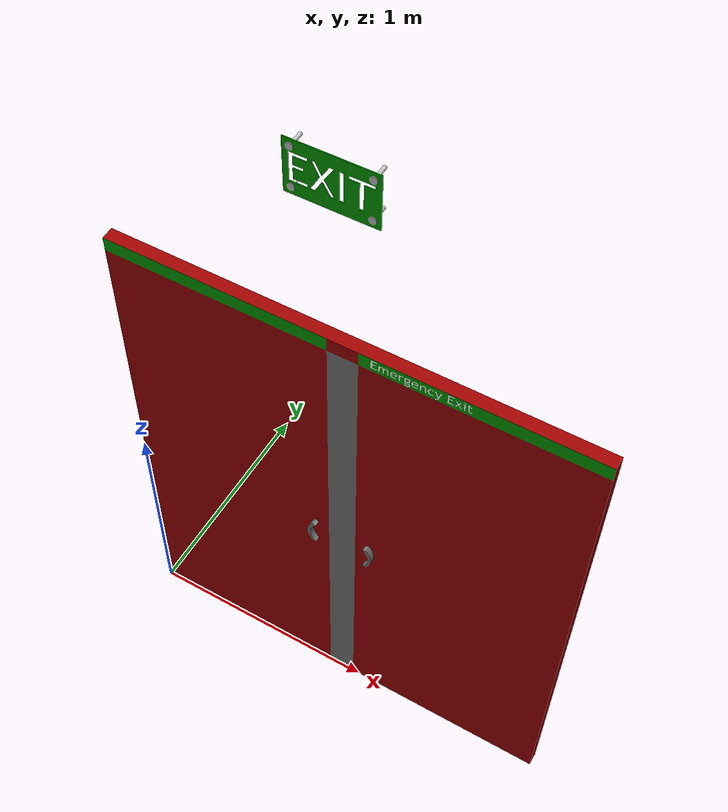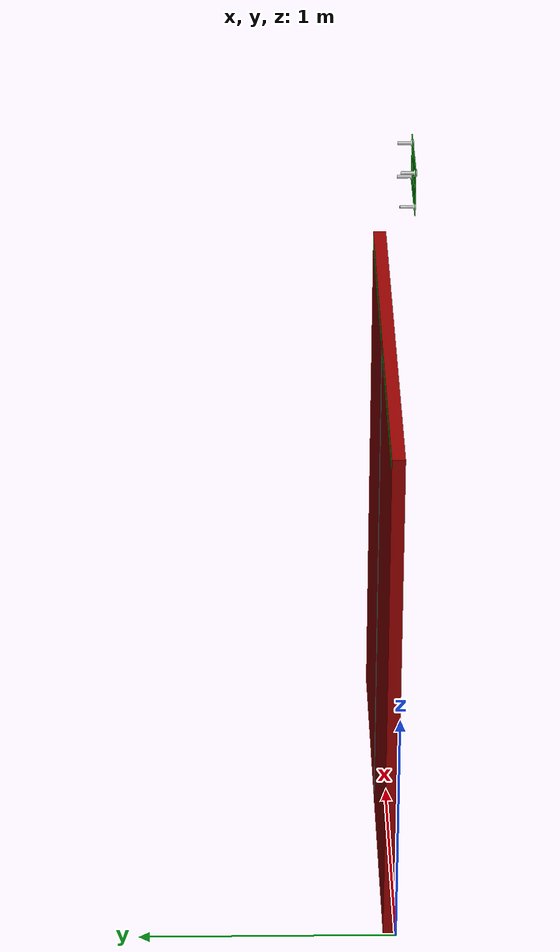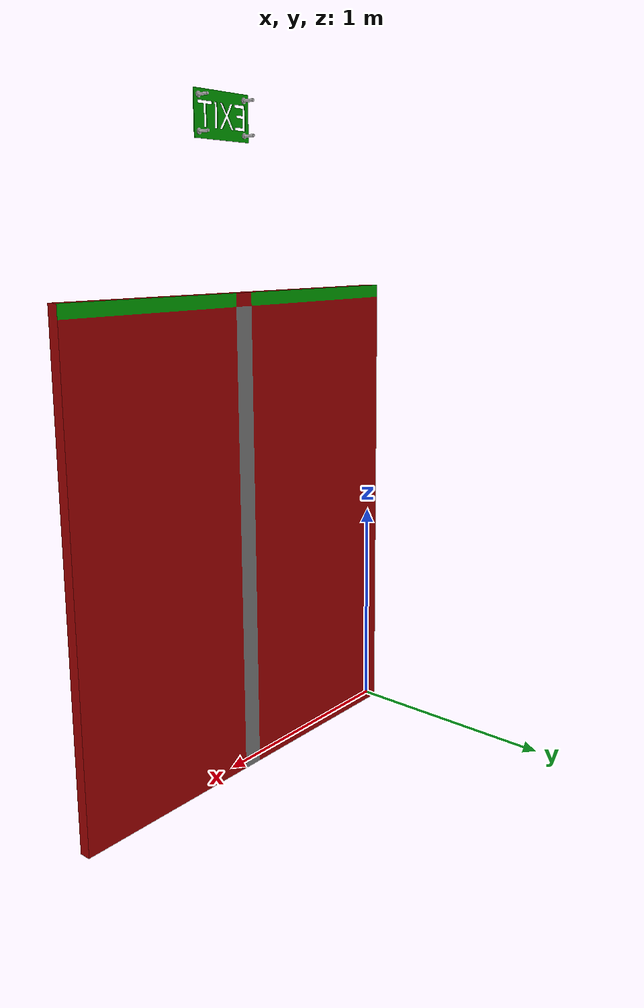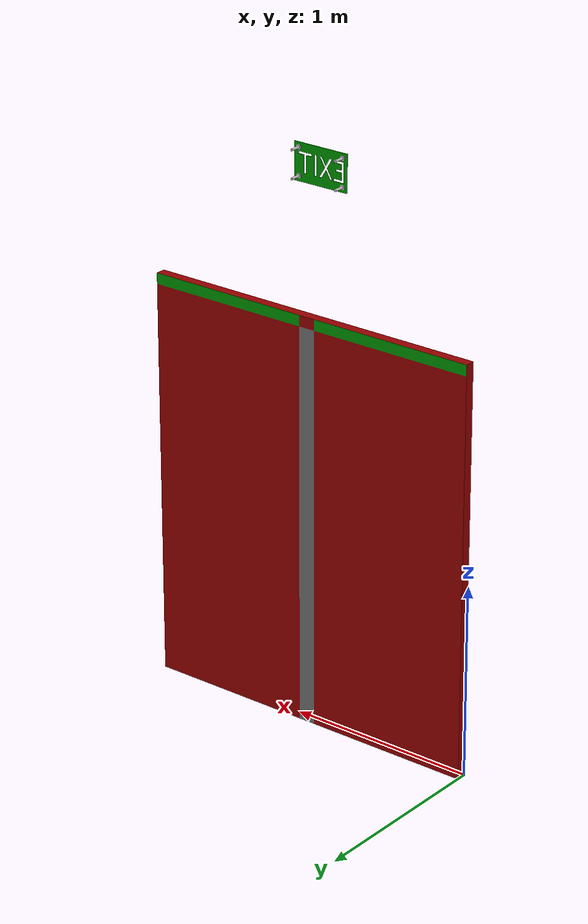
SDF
<?xml version="1.0" ?>
<sdf version="1.5">
  <model name="emergency_exit_door">
    <static>true</static>
    <link name="emergency_exit_door_link">
        <collision name="emergency_exit_door_collision">
         <geometry>
            <mesh>
                <uri>model://emergency_exit_door/meshes/model.dae</uri>
                <scale>1.0 1.0 1.0</scale>
            </mesh>
        </geometry>
      </collision>

      <visual name="emergency_exit_door_mesh">
        <cast_shadows>false</cast_shadows>
        <geometry>
            <mesh>
                <uri>model://emergency_exit_door/meshes/model.dae</uri>
                  <scale>1.0 1.0 1.0</scale>
            </mesh>
        </geometry>
      </visual>
    </link>
  </model>
</sdf>
